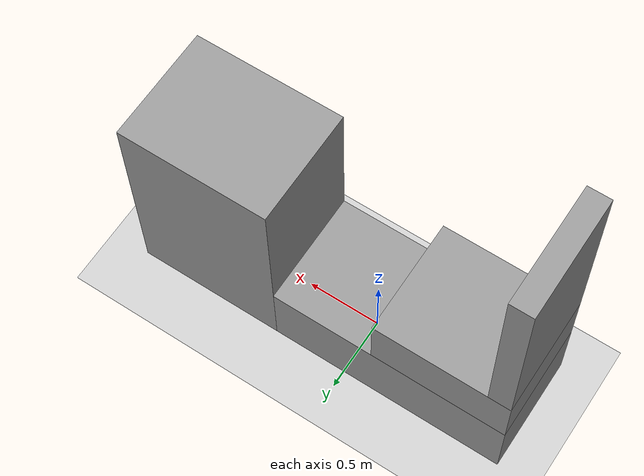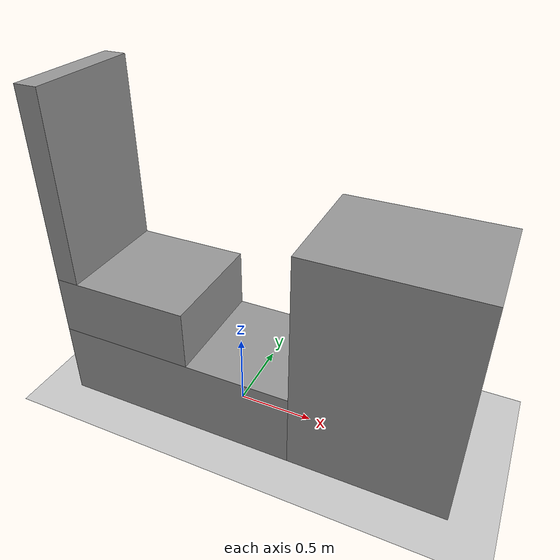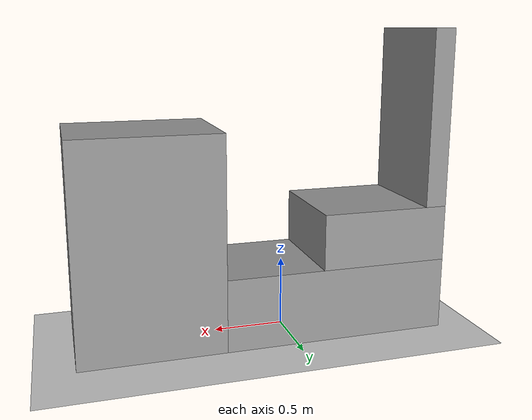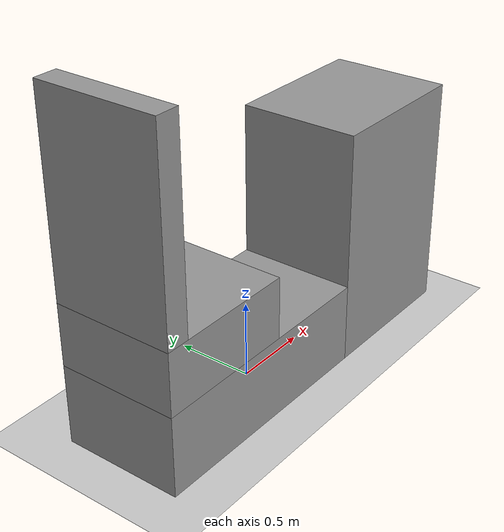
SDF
<gazebo version="1.2">
 <world name="default">
  <physics type="ode">
   <gravity>0 0 -9.81</gravity>
   <update_rate>1000</update_rate>
   <ode>
    <solver><type>quick</type><dt>0.001</dt><iters>40</iters><sor>1.0</sor></solver>
    <constraints>
     <cfm>0.0</cfm>
     <erp>0.2</erp>
     <contact_max_correcting_vel>100.0</contact_max_correcting_vel>
     <contact_surface_layer>0.0</contact_surface_layer>
    </constraints>
   </ode>
  </physics>
  <include><uri>model://sun</uri></include>
  <include><uri>model://ground_plane</uri></include>
  <model name="unit_box_1">
   <pose>-0.3 0.0 0.2575 0.000000 0.000000 0.000000</pose>
   <link name="link">
    <inertial><mass>100.000000</mass></inertial>
    <collision name="collision"><geometry><box><size>1.6 0.77 0.515</size></box></geometry></collision>
    <visual name="visual">
     <geometry><box><size>1.6 0.77 0.515</size></box></geometry>
     <material>
      <script><uri>file://media/materials/scripts/gazebo.material</uri><name>Gazebo/Grey</name></script>
     </material>
    </visual>
    <velocity_decay><linear>0.000000</linear><angular>0.000000</angular></velocity_decay>
   </link>
   <static>1</static>
  </model>
  <model name="unit_box_2">
   <pose>-0.645 0.0 0.7125 0.000000 0.000000 0.000000</pose>
   <link name="link">
    <inertial><mass>100.000000</mass></inertial>
    <collision name="collision"><geometry><box><size>0.91 0.77 0.395</size></box></geometry></collision>
    <visual name="visual">
     <geometry><box><size>0.91 0.77 0.395</size></box></geometry>
     <material>
      <script><uri>file://media/materials/scripts/gazebo.material</uri><name>Gazebo/Grey</name></script>
     </material>
    </visual>
    <velocity_decay><linear>0.000000</linear><angular>0.000000</angular></velocity_decay>
   </link>
   <static>1</static>
  </model>
  <model name="unit_box_3">
   <pose>-1.025 0.0 1.53 0.000000 0.000000 0.000000</pose>
   <link name="link">
    <inertial><mass>100.000000</mass></inertial>
    <collision name="collision"><geometry><box><size>0.15 0.77 1.24</size></box></geometry></collision>
    <visual name="visual">
     <geometry><box><size>0.15 0.77 1.24</size></box></geometry>
     <material>
      <script><uri>file://media/materials/scripts/gazebo.material</uri><name>Gazebo/Grey</name></script>
     </material>
    </visual>
    <velocity_decay><linear>0.000000</linear><angular>0.000000</angular></velocity_decay>
   </link>
   <static>1</static>
  </model>
  <model name="unit_box_4">
   <pose>1 0 0.75 0.000000 0.000000 0.000000</pose>
   <link name="link">
    <inertial><mass>100.000000</mass></inertial>
    <collision name="collision"><geometry><box><size>1 0.77 1.5</size></box></geometry></collision>
    <visual name="visual">
     <geometry><box><size>1 0.77 1.5</size></box></geometry>
     <material>
      <script><uri>file://media/materials/scripts/gazebo.material</uri><name>Gazebo/Grey</name></script>
     </material>
    </visual>
    <velocity_decay><linear>0.000000</linear><angular>0.000000</angular></velocity_decay>
   </link>
   <static>1</static>
  </model>
 </world>
</gazebo>
